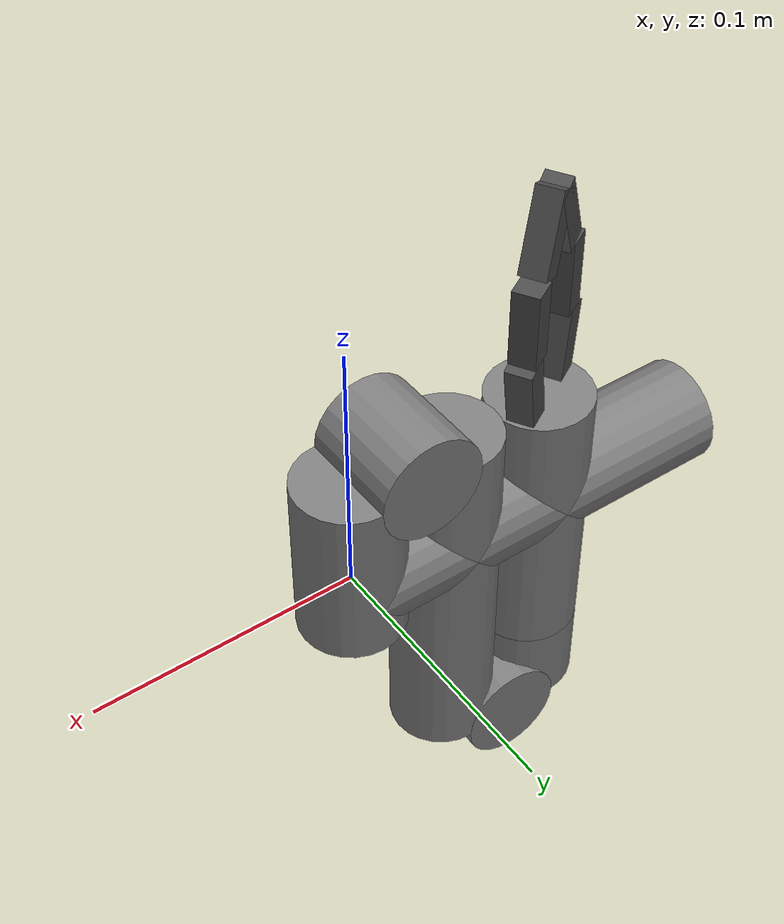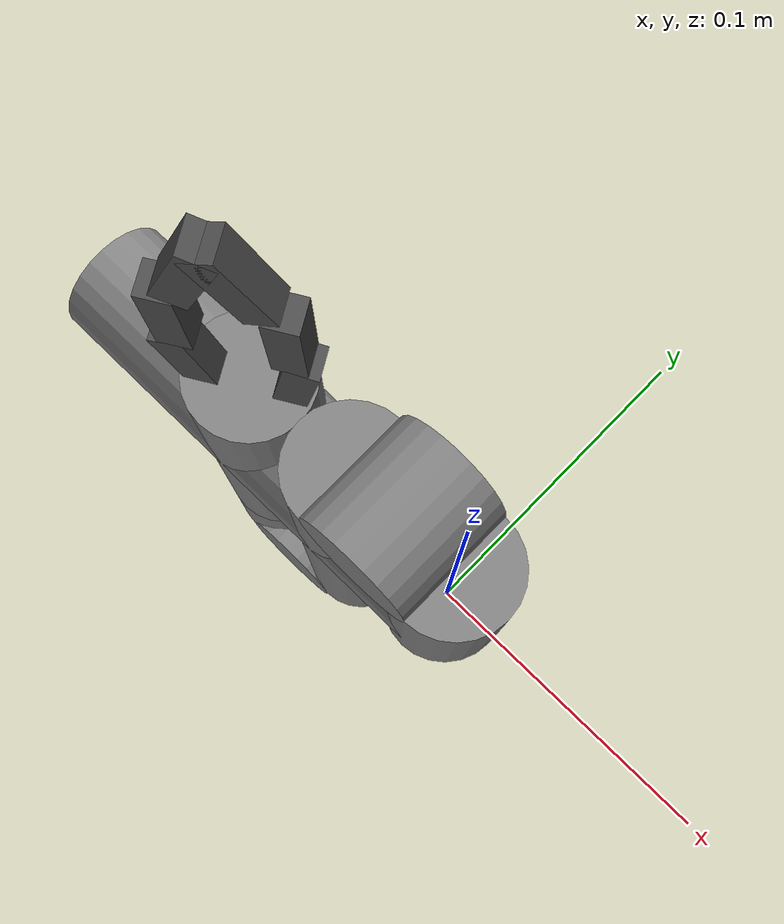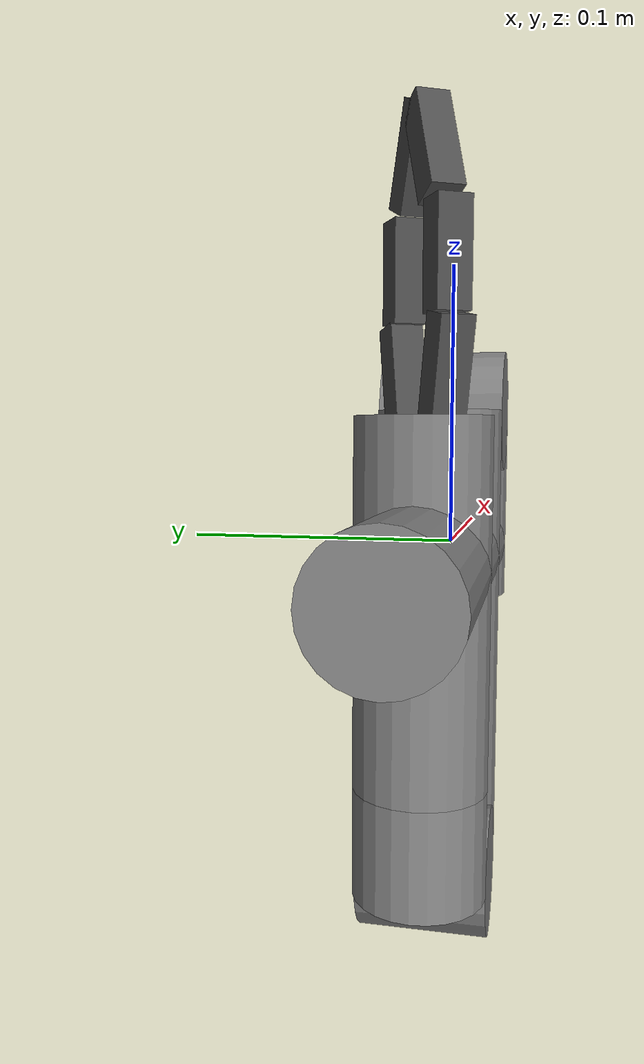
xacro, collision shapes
<?xml version="1.0"?>
<robot xmlns:xacro="http://www.ros.org/wiki/xacro" name="alpha_5">

    <!-- Import alpha_5 urdf file -->
    <xacro:include filename="$(find bpl_alpha_description)/urdf/alpha_5.urdf.xacro" />

    <!-- Import control_xacro -->

</robot>

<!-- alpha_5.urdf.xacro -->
<robot name="alpha_5" xmlns:xacro="http://ros.org/wiki/xacro">

    <material name="black">
        <color rgba="0.5 0.5 0.5 1.0"/>
    </material>

    <link name="world"/>

    <joint name="world_to_base" type="fixed">
        <parent link="world"/>
        <child link="base_link"/>
        <origin xyz="0 0 0" rpy="0 0 0"/>
    </joint>

    <link name="base_link">
        <inertial>
            <mass value="1.0" />
              <inertia ixx="0.001" iyy="0.001" izz="0.001"
                       ixy="0.0" ixz="0.0" iyz="0.0" />
        </inertial>
    </link>

    <link name="m3_inline_link">
        <inertial>
            <mass value="0.5" />
            <inertia  ixx="0.001" ixy="0.0"  ixz="0.0"
                      iyy="0.001"  iyz="0.0"  izz="0.0001" />
        </inertial>
        <visual>
            <geometry>
                <mesh filename="package://bpl_alpha_description/meshes/M3-INLINE.stl"/>
            </geometry>
            <origin rpy="0 0 0" xyz="0 0 0"/>
            <material name="black"/>
        </visual>
        <collision>
            <geometry>
                <cylinder length="0.150" radius="0.020" />
            </geometry>
            <origin rpy="0 1.57075 0" xyz="-0.075 0 0" />
        </collision>
    </link>

    <joint name="base_link_joint" type="fixed">
        <parent link="base_link"/>
        <child link="m3_inline_link"/>
        <origin rpy="0 0 0"/>
    </joint>

    <link name="m2_1_1_link">
        <inertial>
            <mass value="0.5" />
            <inertia  ixx="0.001" ixy="0.0"  ixz="0.0"  iyy="0.001"  iyz="0.0"  izz="0.0001" />
        </inertial>
        <visual>
            <geometry>
                <mesh filename="package://bpl_alpha_description/meshes/M2-1-1.stl"/>
            </geometry>
            <origin rpy="0 0 0" xyz="0 0 0.000" />
            <material name="black"/>
        </visual>
        <collision>
            <geometry>
                <cylinder length="0.066" radius="0.020" />
            </geometry>
            <origin rpy="0 0 0" xyz="0 0 0.000" />
        </collision>
    </link>

    <joint name="axis_e" type="revolute">
        <parent link="m3_inline_link"/>
        <child link="m2_1_1_link"/>
        <origin xyz="0 0 0.014"/>
        <axis xyz="0 0 1"/>
        <limit effort="25" lower="0.0" upper="6.3" velocity="0.5"/>
        <dynamics damping="0.1"/>
    </joint>

    <link name="m2_joint_link">
        <inertial>
            <mass value="0.5" />
            <inertia  ixx="0.001" ixy="0.0"  ixz="0.0"  iyy="0.001"  iyz="0.0"  izz="0.0001" />
        </inertial>
        <visual>
            <geometry>
                <mesh filename="package://bpl_alpha_description/meshes/M2.stl"/>
            </geometry>
            <origin rpy="0 0 0" xyz="0 0 0"/>
            <material name="black"/>
        </visual>
        <collision>
            <geometry>
                <cylinder length="0.145" radius="0.020" />
            </geometry>
            <origin rpy="0 0 0" xyz="-0.02 0 -0.0725" />
        </collision>
        <collision>
            <geometry>
                <cylinder length="0.040" radius="0.020" />
            </geometry>
            <origin rpy="1.5707 0 0" xyz="0 0 0" />
        </collision>
        <collision>
            <geometry>
                <cylinder length="0.040" radius="0.020" />
            </geometry>
            <origin rpy="1.5707 0 0" xyz="-0.040 0 -0.1453" />
        </collision>
    </link>

    <joint name="axis_d" type="revolute">
        <parent link="m2_1_1_link"/>
        <child link="m2_joint_link"/>
        <origin xyz="-0.02 0 0.033"/>
        <axis xyz="0 1 0"/>
        <limit effort="20" lower="0.0" upper="3.8" velocity="0.5"/>
        <dynamics damping="0.1"/>
    </joint>

    <link name="m2_1_2_link">
        <inertial>
            <mass value="0.5" />
            <inertia  ixx="0.001" ixy="0.0"  ixz="0.0"  iyy="0.001"  iyz="0.0"  izz="0.0001" />
        </inertial>
        <visual>
            <geometry>
                <mesh filename="package://bpl_alpha_description/meshes/M2-1-3.stl"/>
            </geometry>
            <origin rpy="0 0 0" xyz="0 0 0"/>
            <material name="black"/>
        </visual>
        <collision>
            <geometry>
                <cylinder length="0.033" radius="0.020" />
            </geometry>
            <origin rpy="0 0 0" xyz="0.02 0 0.0165" />
        </collision>
    </link>

    <joint name="axis_c" type="revolute">
        <parent link="m2_joint_link"/>
        <child link="m2_1_2_link"/>
        <origin xyz="-0.04 0 -0.1453" rpy="0 0 3.14159"/>
        <axis xyz="0 1 0"/>
        <limit effort="10" lower="0.0" upper="3.5" velocity="0.5"/>
        <dynamics damping="0.1"/>
    </joint>

    <link name="m1_link">
        <inertial>
            <mass value="0.5" />
            <inertia  ixx="0.001" ixy="0.0"  ixz="0.0"  iyy="0.001"  iyz="0.0"  izz="0.0001" />
        </inertial>
        <visual>
            <geometry>
                <mesh filename="package://bpl_alpha_description/meshes/RS1-100-101-123.stl"/>
            </geometry>
            <origin rpy="0 -1.5707 0" xyz="0 0 0"/>
            <material name="black"/>
        </visual>
            <collision>
            <geometry>
                <cylinder length="0.10975" radius="0.020" />
            </geometry>
            <origin rpy="0 0 0" xyz="0.00 0 0.054875" />
        </collision>
    </link>

    <joint name="axis_b" type="revolute">
        <parent link="m2_1_2_link"/>
        <child link="m1_link"/>
        <origin xyz="0.02 0 0.033" rpy="0 0 2.09439"/>
        <axis xyz="0 0 -1"/>
        <limit effort="10" lower="0.0" upper="6.2" velocity="0.5"/>
        <dynamics damping="0.1"/>
    </joint>

    <joint name="jaws_joint" type="fixed">
        <origin rpy="0 0 0" xyz="0 0 0.09975"/>
        <parent link="m1_link"/>
        <child link="jaws_base_link"/>
    </joint>

    <link name="jaws_base_link">
        <inertial>
            <mass value="0.5" />
            <inertia  ixx="0.001" ixy="0.0"  ixz="0.0"  iyy="0.001"  iyz="0.0"  izz="0.0001" />
        </inertial>
    </link>

    <link name="push_rod">
        <inertial>
            <mass value="0.2" />
            <inertia  ixx="0.001" ixy="0.0"  ixz="0.0"  iyy="0.001"  iyz="0.0"  izz="0.0001" />
        </inertial>
    </link>

    <joint name="axis_a" type="prismatic">
        <origin rpy="0 0 0" xyz="0 0 0.009"/>
        <parent link="jaws_base_link"/>
        <child link="push_rod"/>
        <axis xyz="0 0 1"/>
        <limit effort="10" lower="0.0" upper="0.015" velocity="10.0"/>
        <dynamics damping="0.1"/>
    </joint>

    <xacro:include filename="$(find bpl_alpha_description)/urdf/end_effectors/standard_jaws.urdf.xacro"/>
    <xacro:alpha_standard_jaws parent="jaws_base_link" name="standard_jaws" axis_a="axis_a">
        <origin xyz="0 0 0" rpy="0 0 0"/>
    </xacro:alpha_standard_jaws>

    <gazebo reference="m3_inline_link">
        <material>Gazebo/FlatBlack</material>
    </gazebo>
    <gazebo reference="m2_1_1_link">
        <material>Gazebo/FlatBlack</material>
    </gazebo>
    <gazebo reference="m2_joint_link">
        <material>Gazebo/FlatBlack</material>
    </gazebo>
    <gazebo reference="m2_1_2_link">
        <material>Gazebo/FlatBlack</material>
    </gazebo>
    <gazebo reference="m1_link">
        <material>Gazebo/FlatBlack</material>
    </gazebo>

    <xacro:arg name="sim_mode" default="true"/>
    <xacro:include filename='ros2_control.xacro'/>

</robot>

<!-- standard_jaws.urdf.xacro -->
<robot name="alpha_standard_jaws" xmlns:xacro="http://ros.org/wiki/xacro">
    <xacro:macro name="alpha_standard_jaws" params="parent *origin name:=alpha_standard_jaws axis_a">
        <material name="${name}_black">
            <color rgba="0.3 0.3 0.3 1" />
        </material>

        <joint name="${name}_joint" type="fixed">
            <xacro:insert_block name="origin" />
            <parent link="${parent}"/>
            <child link="${name}_base_link" />
            <origin xyz="0 0 0" rpy="0 0 0"/>
        </joint>

        <link name="${name}_base_link">
            <visual>
                <geometry>
                    <mesh filename="package://bpl_alpha_description/meshes/end_effectors/RS1-124.stl"/>
                </geometry>
                <material name="${name}_black"/>
            </visual>
            <inertial>
                <mass value="0.2" />
                <inertia  ixx="0.001" ixy="0.0"  ixz="0.0"  iyy="0.001"  iyz="0.0"  izz="0.0001" />
            </inertial>
        </link>

        <link name="${name}_rs1_130_link">
            <visual>
                <geometry>
                    <mesh filename="package://bpl_alpha_description/meshes/end_effectors/RS1-130.stl"/>
                </geometry>
            <material name="${name}_black"/>
            <origin xyz="0 0 0" rpy="0 0 0"/>
        </visual>
        <collision>
            <origin xyz="0 0 0.01501" rpy="-0.2 0 0"/>
            <geometry>
                <box size="0.01 0.01 0.03"/>
            </geometry>
        </collision>
        <collision>
            <origin xyz="0 0 0.04504" rpy="0 0 0"/>
            <geometry>
                <box size="0.01 0.01 0.03"/>
            </geometry>
        </collision>
        <collision>
            <origin xyz="0 -0.01 0.07506" rpy="0.4  0 0"/>
            <geometry>
                <box size="0.01 0.01 0.03"/>
            </geometry>
        </collision>
        <inertial>
            <origin xyz="0 0 0.04505" rpy="0 0 0"/>
            <mass value="0.1"/>
            <inertia
            ixx="1e-4" ixy="0.0" ixz="0.0"
            iyy="1e-4" iyz="0.0"
            izz="1e-4"/>
        </inertial>
        </link>

        <joint name="${name}_rs1_130_joint" type="revolute">
          <origin xyz="0 0.0155 0.0069" rpy="0 0 0"/>
          <parent link="${name}_base_link"/>
          <child link="${name}_rs1_130_link"/>
          <axis xyz="-1 0 0"/>
          <limit lower="0" upper="0.5" effort="10" velocity="10"/>
          <mimic joint="${axis_a}" multiplier="51" offset="0"/>
        </joint>

        <link name="${name}_rs1_139_link">
            <visual>
                <geometry>
                    <mesh filename="package://bpl_alpha_description/meshes/end_effectors/RS1-139.stl"/>
                </geometry>
            <material name="${name}_black"/>
            <origin xyz="0 0 0" rpy="0 0 0"/>
        </visual>
        <collision>
            <origin xyz="0 0 0.01501" rpy="0.2 0 0"/>
            <geometry>
                <box size="0.01 0.01 0.03"/>
            </geometry>
        </collision>
        <collision>
            <origin xyz="0 0 0.04504" rpy="0 0 0"/>
            <geometry>
                <box size="0.01 0.01 0.03"/>
            </geometry>
        </collision>
        <collision>
            <origin xyz="0 0.01 0.07506" rpy="-0.4  0 0"/>
            <geometry>
                <box size="0.01 0.01 0.03"/>
            </geometry>
        </collision>
        <inertial>
            <origin xyz="0 0 0.04505" rpy="0 0 0"/>
            <mass value="0.1"/>
            <inertia
            ixx="1e-4" ixy="0.0" ixz="0.0"
            iyy="1e-4" iyz="0.0"
            izz="1e-4"/>
        </inertial>
        </link>

        <joint name="${name}_rs1_139_joint" type="revolute">
          <origin xyz="0 -0.0155 0.0069" rpy="0 0 0"/>
          <parent link="${name}_base_link"/>
          <child link="${name}_rs1_139_link"/>
          <axis xyz="1 0 0"/>
          <limit lower="0" upper="0.5" effort="10" velocity="10"/>
          <mimic joint="${name}_rs1_130_joint" multiplier="1" offset="0"/>
        </joint>

        <gazebo reference="${name}_base_link">
            <material>Gazebo/FlatBlack</material>
        </gazebo>
        <gazebo reference="${name}_rs1_130_link">
            <material>Gazebo/FlatBlack</material>
        </gazebo>
        <gazebo reference="${name}_rs1_139_link">
            <material>Gazebo/FlatBlack</material>
        </gazebo>

    </xacro:macro>
</robot>
